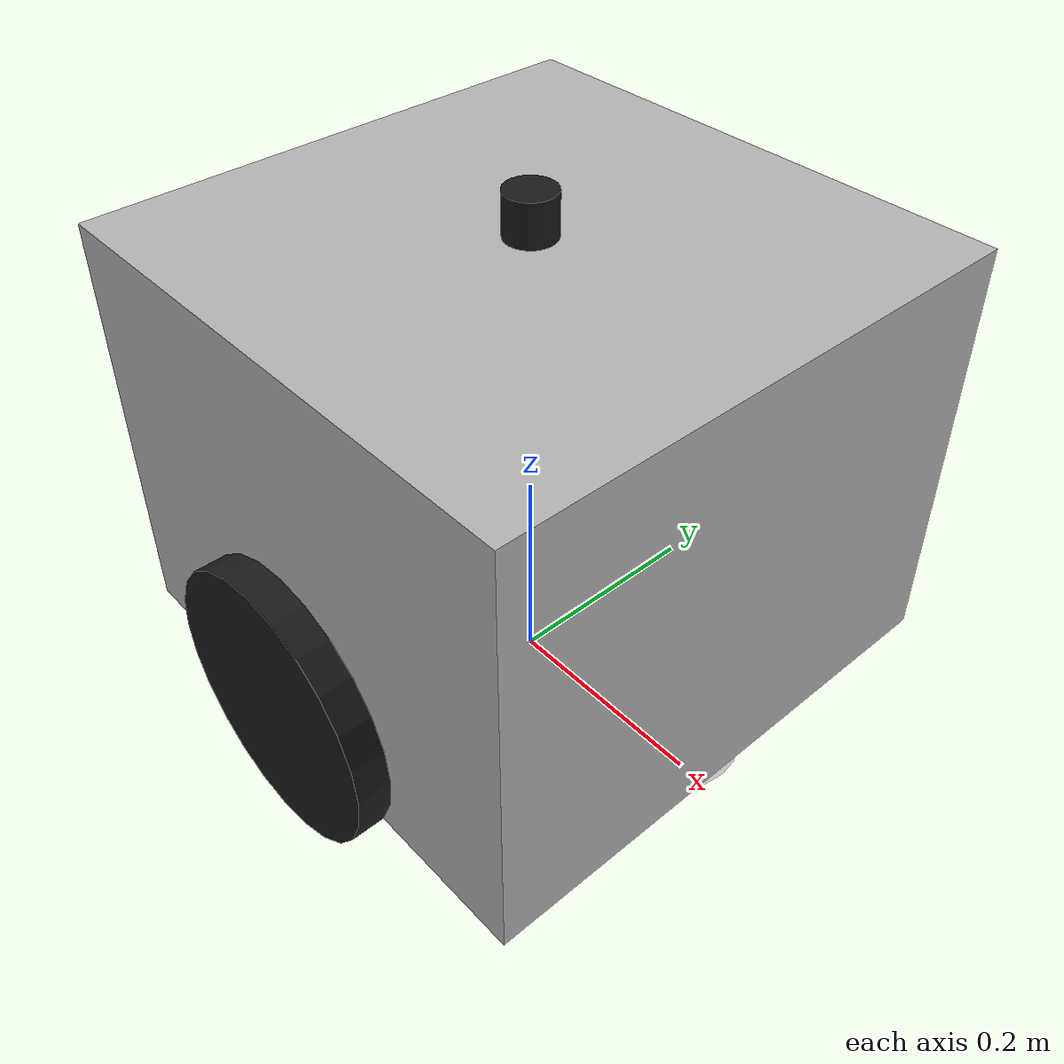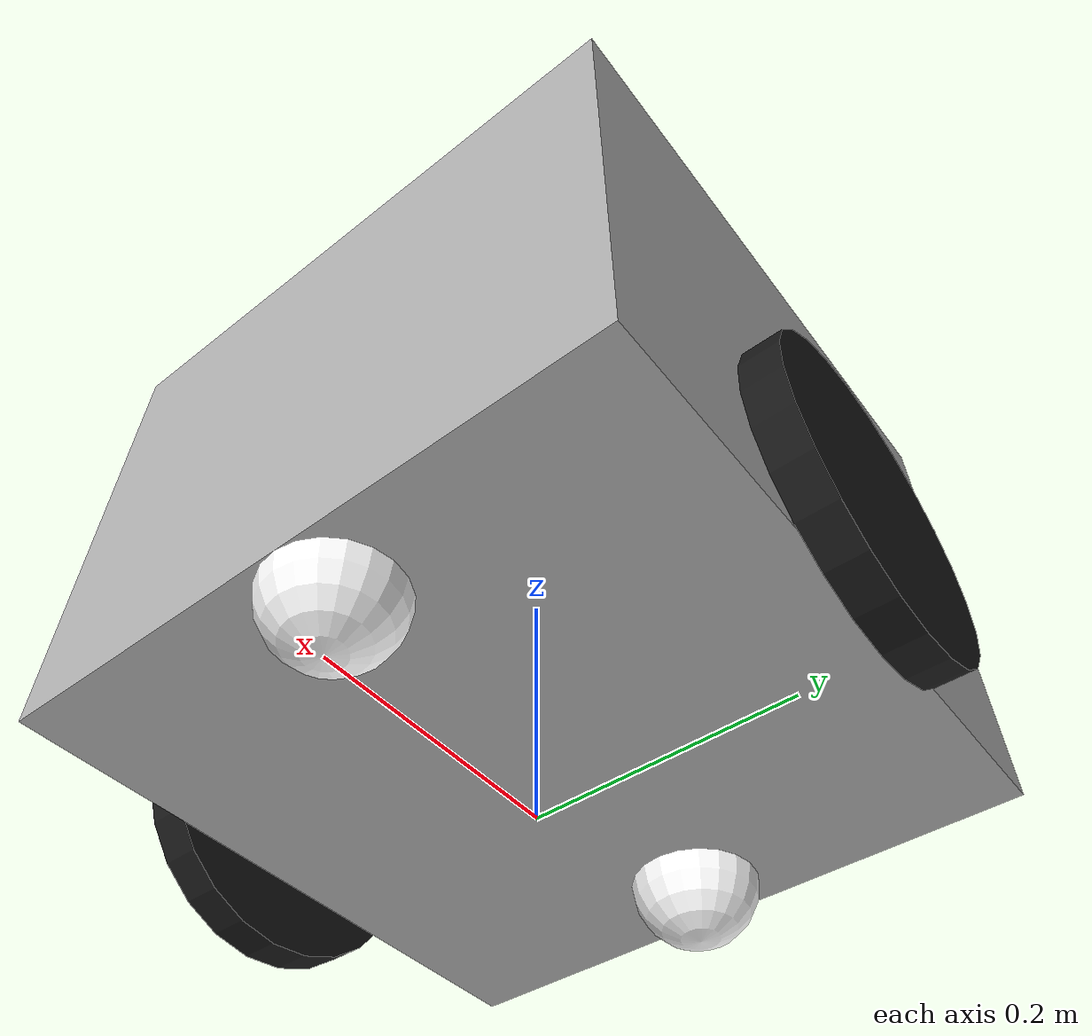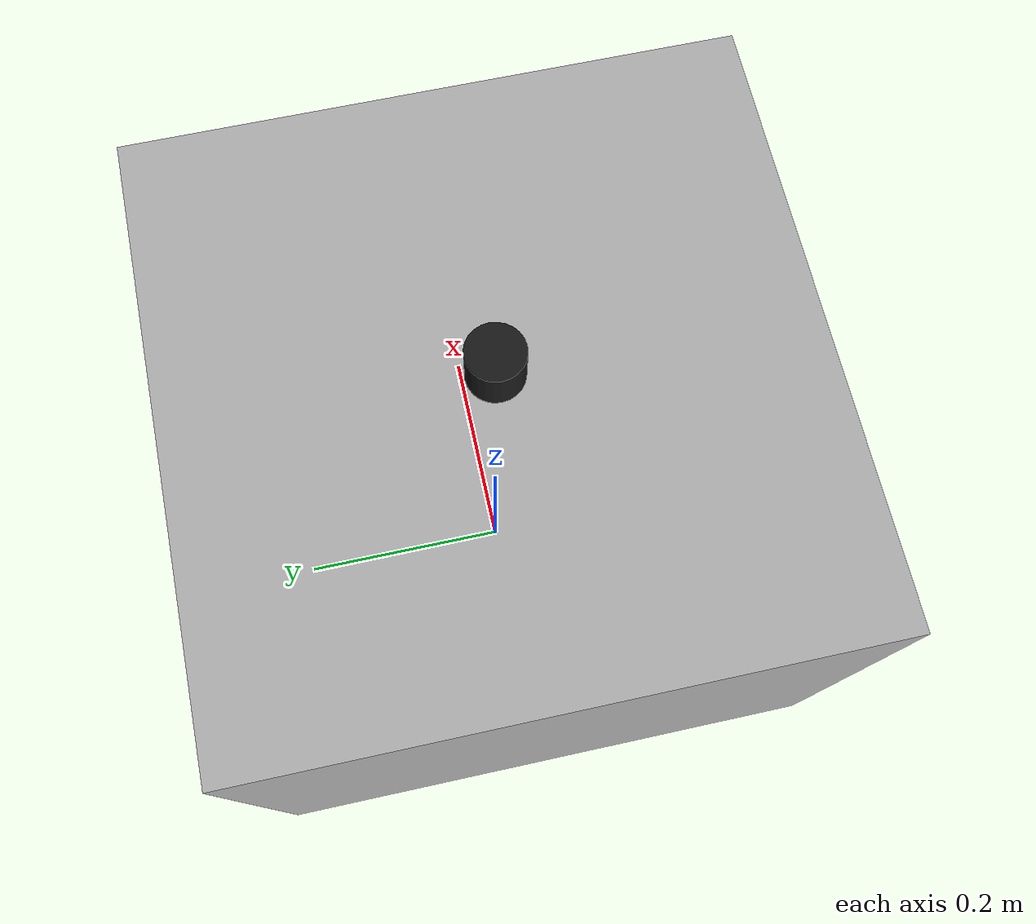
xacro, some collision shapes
<?xml version='1.0' ?>
<robot name="shelfino" xmlns:xacro="http://www.ros.org/wiki/xacro">
  <xacro:arg name="robot_id" default="X" />

  <xacro:macro name="shelfino" params="robot_id">

  <!--
                                                        MATERIALS
  -->
    <material name="black">
        <color rgba="0.1 0.1 0.1 1.0"/>
    </material>

    <material name="grey">
      <color rgba="0.7 0.7 0.7 1.0"/>
    </material>

    <material name="white">
      <color rgba="1.0 1.0 1.0 1.0"/>
    </material>

  <!--
                                                        BODY OF SHELFINO
  -->
    <link name='shelfino${robot_id}/base_link'>
      <visual name='body_visual'>
        <origin xyz='0 0 0.25'/>
        <geometry>
          <box size="0.5 0.5 0.4" />
        </geometry>
        <material name="grey" />
      </visual>

      <visual name='front_caster_visual'>
        <origin xyz='-0.2 0 0.05'/>
        <geometry>
          <sphere radius="0.05" />
        </geometry>
        <material name="white" />
      </visual>

      <visual name='back_caster_visual'>
        <origin xyz='0.2 0 0.05'/>
        <geometry>
          <sphere radius="0.05" />
        </geometry>
        <material name="white" />
      </visual>

      <collision name='collision'>
        <origin xyz='0 0 0.225'/>
        <geometry>
          <box size="0.5 0.5 0.45" />
        </geometry>
      </collision>
    </link>

  <!--
                                                        LEFT WHEEL JOINT
  -->
    <joint name="wheel_left_joint" type="continuous">
      <parent link="shelfino${robot_id}/base_link"/>
      <child link="shelfino${robot_id}/left_wheel"/>
      <origin xyz="0 0.27 0.125" rpy="0 1.5707 1.5707"/>
      <axis xyz="0 0 1"/>
    </joint>

  <!--
                                                        LEFT WHEEL
  -->
    <link name="shelfino${robot_id}/left_wheel">
      <visual name="visual">
        <geometry>
        <cylinder radius="0.125" length="0.03" />
        </geometry>
        <material name="black" />
      </visual>

      <collision name="collision">
        <geometry>
          <cylinder radius="0.125" length="0.03" />
        </geometry>
      </collision>

      <inertial>
        <mass value="2.8498940e-02" />
        <inertia ixx="1.1175580e-05" ixy="-4.2369783e-11" ixz="-5.9381719e-09"
                iyy="1.1192413e-05" iyz="-1.4400107e-11"
                izz="2.0712558e-05" />
      </inertial>
    </link>

  <!--
                                                        RIGHT WHEEL JOINT
  -->
    <joint name="wheel_right_joint" type="continuous">
      <parent link="shelfino${robot_id}/base_link"/>
      <child link="shelfino${robot_id}/right_wheel"/>
      <origin xyz="0 -0.27 0.125" rpy="0 1.5707 1.5707"/>
      <axis xyz="0 0 1"/>
    </joint>

  <!--
                                                        RIGHT WHEEL
  -->
    <link name="shelfino${robot_id}/right_wheel">
      <visual name="visual">
        <geometry>
          <cylinder radius="0.125" length="0.03" />
        </geometry>
        <material name="black" />
      </visual>

      <collision name="collision">
        <geometry>
          <cylinder radius="0.125" length="0.03" />
        </geometry>
      </collision>

      <inertial>
        <mass value="2.8498940e-02" />
        <inertia ixx="1.1175580e-05" ixy="-4.2369783e-11" ixz="-5.9381719e-09"
                iyy="1.1192413e-05" iyz="-1.4400107e-11"
                izz="2.0712558e-05" />
      </inertial>
    </link>

  <!--
                                                        LIDAR FIXED JOINT
  -->
    <joint name="lidar2d_joint" type="fixed">
      <parent link="shelfino${robot_id}/base_link"></parent>
      <child link="shelfino${robot_id}/base_laser"></child>
      <origin xyz="0 0 0.45" rpy="0 0 0"/>
    </joint>

  <!--
                                                        LIDAR
  -->
    <link name="shelfino${robot_id}/base_laser">
      <visual>
        <geometry>
          <mesh filename="package://shelfino_description/models/lidar2d/meshes/hokuyo.dae" />
        </geometry>
        <material name="black"/>
      </visual>

      <collision>
        <origin xyz="0 0 0.02"/>
        <geometry>
          <cylinder length="0.04" radius="0.023"/>
        </geometry>
      </collision>

      <inertial>
        <mass value="0.1" />
        <origin xyz="0 0 0" />
        <inertia ixx="0.001" ixy="0.0" ixz="0.0"
                iyy="0.001" iyz="0.0"
                izz="0.001" />
      </inertial>
    </link>

  </xacro:macro>

  <xacro:shelfino robot_id="$(arg robot_id)" />
</robot>
